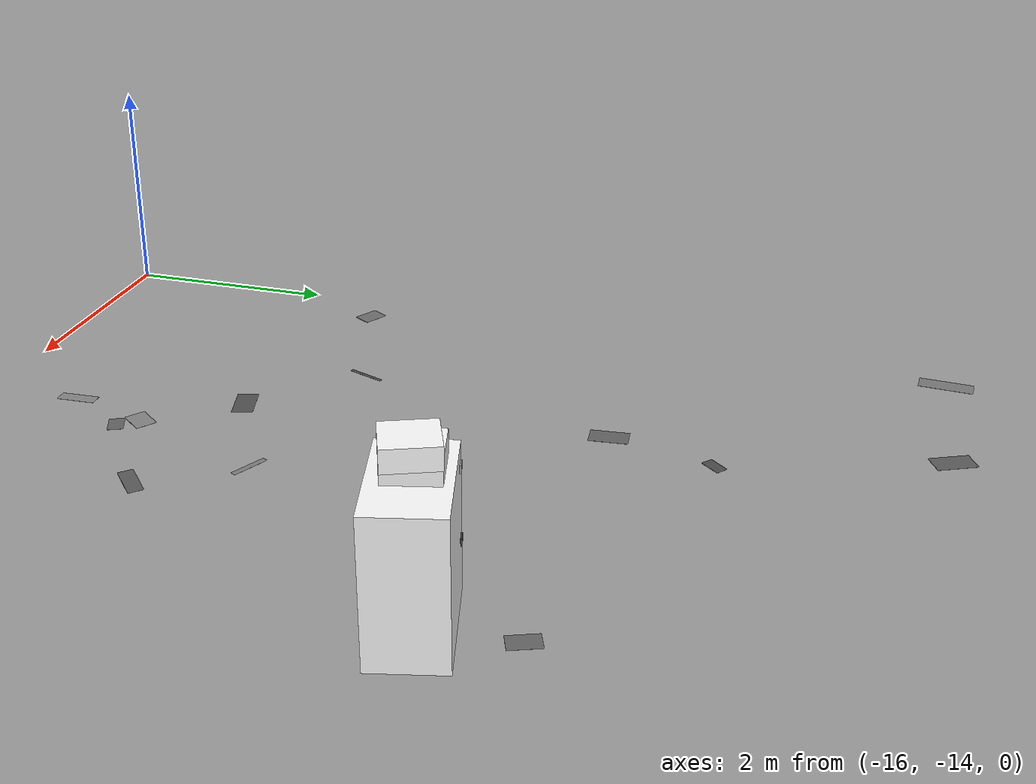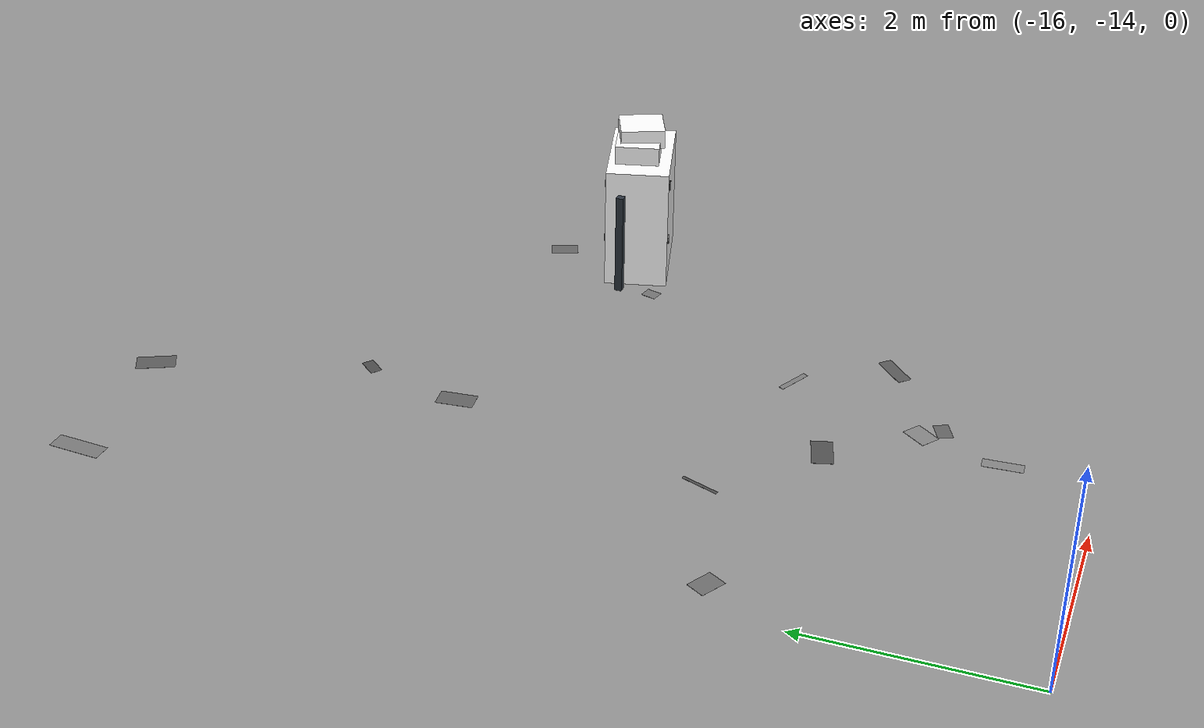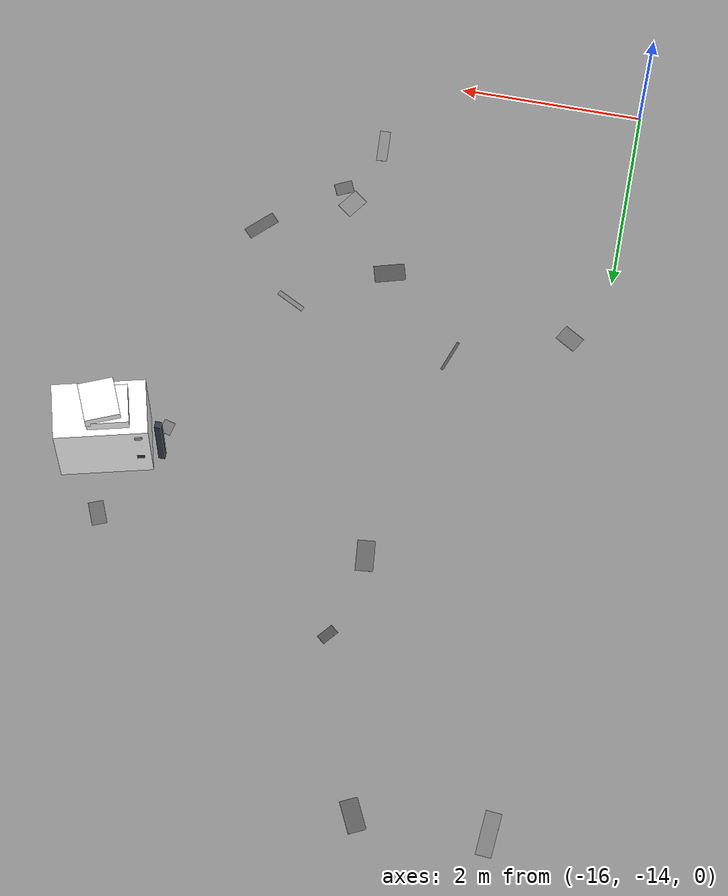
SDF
<sdf version="1.9">
 <world name="warehouse_irregular">
  <model name="concrete_patch_27">
   <static>true</static>
   <pose>-11.511544108007044 -9.484470568630492 0.0006 0 0 -0.2614906827322425</pose>
   <link name="body">
    <visual name="surface">
     <geometry><box><size>0.12617409275901517 0.14898016078374 0.001</size></box></geometry>
     <material>
      <ambient>0.4552531014726735 0.4552531014726735 0.4552531014726735 1</ambient>
      <diffuse>0.4552531014726735 0.4552531014726735 0.4552531014726735 1</diffuse>
     </material>
    </visual>
   </link>
  </model>
  <model name="concrete_patch_36">
   <static>true</static>
   <pose>-14.250769265056409 -5.602571911966898 0.0006 0 0 -1.1307715295928862</pose>
   <link name="body">
    <visual name="surface">
     <geometry><box><size>0.3597154631595746 0.19761359095736544 0.001</size></box></geometry>
     <material>
      <ambient>0.35916469509802007 0.35916469509802007 0.35916469509802007 1</ambient>
      <diffuse>0.35916469509802007 0.35916469509802007 0.35916469509802007 1</diffuse>
     </material>
    </visual>
   </link>
  </model>
  <model name="concrete_patch_63">
   <static>true</static>
   <pose>-15.647237499369165 -11.273019038510743 0.0006 0 0 -0.5378085769982066</pose>
   <link name="body">
    <visual name="surface">
     <geometry><box><size>0.2462228516302038 0.18297292168195708 0.001</size></box></geometry>
     <material>
      <ambient>0.43172741633347667 0.43172741633347667 0.43172741633347667 1</ambient>
      <diffuse>0.43172741633347667 0.43172741633347667 0.43172741633347667 1</diffuse>
     </material>
    </visual>
   </link>
  </model>
  <model name="concrete_patch_79">
   <static>true</static>
   <pose>-13.239614399875691 -13.176427403725977 0.0006 0 0 -1.5238059353305178</pose>
   <link name="body">
    <visual name="surface">
     <geometry><box><size>0.3584625121675123 0.1171337970262335 0.001</size></box></geometry>
     <material>
      <ambient>0.5234246532144183 0.5234246532144183 0.5234246532144183 1</ambient>
      <diffuse>0.5234246532144183 0.5234246532144183 0.5234246532144183 1</diffuse>
     </material>
    </visual>
   </link>
  </model>
  <model name="concrete_patch_81">
   <static>true</static>
   <pose>-10.959770945896489 -8.393697101876976 0.0006 0 0 1.945323711939789</pose>
   <link name="body">
    <visual name="surface">
     <geometry><box><size>0.2592873715019643 0.16388999822609182 0.001</size></box></geometry>
     <material>
      <ambient>0.39756985920665977 0.39756985920665977 0.39756985920665977 1</ambient>
      <diffuse>0.39756985920665977 0.39756985920665977 0.39756985920665977 1</diffuse>
     </material>
    </visual>
   </link>
  </model>
  <model name="concrete_patch_101">
   <static>true</static>
   <pose>-15.682086781024072 -5.658934722961007 0.0006 0 0 -1.6474521312828982</pose>
   <link name="body">
    <visual name="surface">
     <geometry><box><size>0.48498573463867656 0.17366191582292687 0.001</size></box></geometry>
     <material>
      <ambient>0.476606385336852 0.476606385336852 0.476606385336852 1</ambient>
      <diffuse>0.476606385336852 0.476606385336852 0.476606385336852 1</diffuse>
     </material>
    </visual>
   </link>
  </model>
  <model name="concrete_patch_111">
   <static>true</static>
   <pose>-12.899351940136725 -12.59735453845526 0.0006 0 0 1.9965118233431705</pose>
   <link name="body">
    <visual name="surface">
     <geometry><box><size>0.13824525928905343 0.1985953893491612 0.001</size></box></geometry>
     <material>
      <ambient>0.38873641134624703 0.38873641134624703 0.38873641134624703 1</ambient>
      <diffuse>0.38873641134624703 0.38873641134624703 0.38873641134624703 1</diffuse>
     </material>
    </visual>
   </link>
  </model>
  <model name="concrete_patch_147">
   <static>true</static>
   <pose>-12.560836690026616 -11.171464919823954 0.0006 0 0 2.6618390684889146</pose>
   <link name="body">
    <visual name="surface">
     <geometry><box><size>0.3318039627162251 0.053884863419849174 0.001</size></box></geometry>
     <material>
      <ambient>0.4915978318047145 0.4915978318047145 0.4915978318047145 1</ambient>
      <diffuse>0.4915978318047145 0.4915978318047145 0.4915978318047145 1</diffuse>
     </material>
    </visual>
   </link>
  </model>
  <model name="concrete_patch_148">
   <static>true</static>
   <pose>-14.391598849627535 -10.842856466796864 0.0006 0 0 -1.927515840834878</pose>
   <link name="body">
    <visual name="surface">
     <geometry><box><size>0.3597704994159477 0.03234455968590188 0.001</size></box></geometry>
     <material>
      <ambient>0.3177341703154221 0.3177341703154221 0.3177341703154221 1</ambient>
      <diffuse>0.3177341703154221 0.3177341703154221 0.3177341703154221 1</diffuse>
     </material>
    </visual>
   </link>
  </model>
  <model name="concrete_patch_172">
   <static>true</static>
   <pose>-13.879288911235456 -8.428765666911294 0.0006 0 0 -1.4840936896268904</pose>
   <link name="body">
    <visual name="surface">
     <geometry><box><size>0.3435426610006122 0.1929753616322127 0.001</size></box></geometry>
     <material>
      <ambient>0.38959624349797567 0.38959624349797567 0.38959624349797567 1</ambient>
      <diffuse>0.38959624349797567 0.38959624349797567 0.38959624349797567 1</diffuse>
     </material>
    </visual>
   </link>
  </model>
  <model name="concrete_patch_184">
   <static>true</static>
   <pose>-13.02485041164908 -12.430117482110958 0.0006 0 0 -2.217935801780171</pose>
   <link name="body">
    <visual name="surface">
     <geometry><box><size>0.25595335270638336 0.18660491335632026 0.001</size></box></geometry>
     <material>
      <ambient>0.5221537044139402 0.5221537044139402 0.5221537044139402 1</ambient>
      <diffuse>0.5221537044139402 0.5221537044139402 0.5221537044139402 1</diffuse>
     </material>
    </visual>
   </link>
  </model>
  <model name="concrete_patch_187">
   <static>true</static>
   <pose>-13.640771615722635 -7.493334288467089 0.0006 0 0 -2.2753776163036257</pose>
   <link name="body">
    <visual name="surface">
     <geometry><box><size>0.19609260246412463 0.11050014779194908 0.001</size></box></geometry>
     <material>
      <ambient>0.2992292366235914 0.2992292366235914 0.2992292366235914 1</ambient>
      <diffuse>0.2992292366235914 0.2992292366235914 0.2992292366235914 1</diffuse>
     </material>
    </visual>
   </link>
  </model>
  <model name="concrete_patch_209">
   <static>true</static>
   <pose>-12.078279397338827 -11.993103574441257 0.0006 0 0 -2.390092965022915</pose>
   <link name="body">
    <visual name="surface">
     <geometry><box><size>0.35964104919884793 0.13158771196659014 0.001</size></box></geometry>
     <material>
      <ambient>0.3546096735692484 0.3546096735692484 0.3546096735692484 1</ambient>
      <diffuse>0.3546096735692484 0.3546096735692484 0.3546096735692484 1</diffuse>
     </material>
    </visual>
   </link>
  </model>
  <model name="concrete_patch_231">
   <static>true</static>
   <pose>-13.571392825418748 -11.6868489868023 0.0006 0 0 0.2695022145552777</pose>
   <link name="body">
    <visual name="surface">
     <geometry><box><size>0.3389363615562308 0.1907165644943579 0.001</size></box></geometry>
     <material>
      <ambient>0.31486309341003443 0.31486309341003443 0.31486309341003443 1</ambient>
      <diffuse>0.31486309341003443 0.31486309341003443 0.31486309341003443 1</diffuse>
     </material>
    </visual>
   </link>
  </model>
  <model name="cabinet_24">
   <static>true</static>
   <pose>-10.902446832675194 -9.158007575695116 0.5964775591978713 0 0 0.23784795586395635</pose>
   <link name="body">
    <visual name="surface">
     <geometry><box><size>1 0.6 1.1929551183957425</size></box></geometry>
     <material>
      <ambient>1 1 1 1</ambient>
      <diffuse>1 1 1 1</diffuse>
      <pbr>
       <metal>
        <albedo_map>model://feature_warehouse_materials/textures/storage_24.png</albedo_map>
        <roughness>.9</roughness>
        <metalness>0</metalness>
       </metal>
      </pbr>
     </material>
    </visual>
    <collision name="solid"><geometry><box><size>1 0.6 1.1929551183957425</size></box></geometry></collision>
   </link>
  </model>
  <model name="panel_24_3_-1">
   <static>true</static>
   <pose>-11.208763854843935 -9.546105469290666 0.46372245221533737 0 0 0.23784795586395635</pose>
   <link name="body">
    <visual name="surface">
     <geometry><box><size>0.08 0.012 0.065</size></box></geometry>
     <material>
      <ambient>0.4511324018342654 0.4511324018342654 0.4511324018342654 1</ambient>
      <diffuse>0.4511324018342654 0.4511324018342654 0.4511324018342654 1</diffuse>
     </material>
    </visual>
   </link>
  </model>
  <model name="panel_24_3_1">
   <static>true</static>
   <pose>-11.352487001245619 -8.953278633538098 0.46372245221533737 0 0 0.23784795586395635</pose>
   <link name="body">
    <visual name="surface">
     <geometry><box><size>0.08 0.012 0.065</size></box></geometry>
     <material>
      <ambient>0.27192635129522746 0.27192635129522746 0.27192635129522746 1</ambient>
      <diffuse>0.27192635129522746 0.27192635129522746 0.27192635129522746 1</diffuse>
     </material>
    </visual>
   </link>
  </model>
  <model name="panel_24_5_-1">
   <static>true</static>
   <pose>-11.210143391686303 -9.546439920033453 1.045273069321886 0 0 0.23784795586395635</pose>
   <link name="body">
    <visual name="surface">
     <geometry><box><size>0.08 0.012 0.065</size></box></geometry>
     <material>
      <ambient>0.2382955305975551 0.2382955305975551 0.2382955305975551 1</ambient>
      <diffuse>0.2382955305975551 0.2382955305975551 0.2382955305975551 1</diffuse>
     </material>
    </visual>
   </link>
  </model>
  <model name="panel_24_5_1">
   <static>true</static>
   <pose>-11.353866538087987 -8.953613084280887 1.045273069321886 0 0 0.23784795586395635</pose>
   <link name="body">
    <visual name="surface">
     <geometry><box><size>0.08 0.012 0.065</size></box></geometry>
     <material>
      <ambient>0.6191631500983455 0.6191631500983455 0.6191631500983455 1</ambient>
      <diffuse>0.6191631500983455 0.6191631500983455 0.6191631500983455 1</diffuse>
     </material>
    </visual>
   </link>
  </model>
  <model name="carton_24_0">
   <static>true</static>
   <pose>-10.993004668875857 -9.158007575695116 1.2929551183957426 0 0 0.23784795586395635</pose>
   <link name="body">
    <visual name="surface">
     <geometry><box><size>0.45 0.42 0.18</size></box></geometry>
     <material>
      <ambient>1 1 1 1</ambient>
      <diffuse>1 1 1 1</diffuse>
      <pbr>
       <metal>
        <albedo_map>model://feature_warehouse_materials/textures/storage_24.png</albedo_map>
        <roughness>.9</roughness>
        <metalness>0</metalness>
       </metal>
      </pbr>
     </material>
    </visual>
    <collision name="solid"><geometry><box><size>0.45 0.42 0.18</size></box></geometry></collision>
   </link>
  </model>
  <model name="carton_24_1">
   <static>true</static>
   <pose>-10.915682007684971 -9.158007575695116 1.4129551183957427 0 0 0.3878479558639564</pose>
   <link name="body">
    <visual name="surface">
     <geometry><box><size>0.38 0.42 0.18</size></box></geometry>
     <material>
      <ambient>1 1 1 1</ambient>
      <diffuse>1 1 1 1</diffuse>
      <pbr>
       <metal>
        <albedo_map>model://feature_warehouse_materials/textures/storage_24.png</albedo_map>
        <roughness>.9</roughness>
        <metalness>0</metalness>
       </metal>
      </pbr>
     </material>
    </visual>
    <collision name="solid"><geometry><box><size>0.38 0.42 0.18</size></box></geometry></collision>
   </link>
  </model>
  <model name="post_24_-1">
   <static>true</static>
   <pose>-11.522446832675193 -9.158007575695116 0.5 0 0 0</pose>
   <link name="body">
    <visual name="surface">
     <geometry><box><size>0.07 0.07 1</size></box></geometry>
     <material><ambient>0.18 0.21 0.25 1</ambient><diffuse>0.18 0.21 0.25 1</diffuse></material>
    </visual>
    <collision name="solid"><geometry><box><size>0.07 0.07 1</size></box></geometry></collision>
   </link>
  </model>
 </world>
</sdf>
